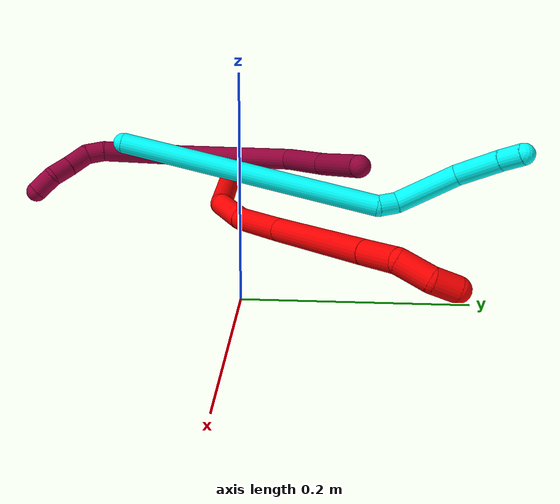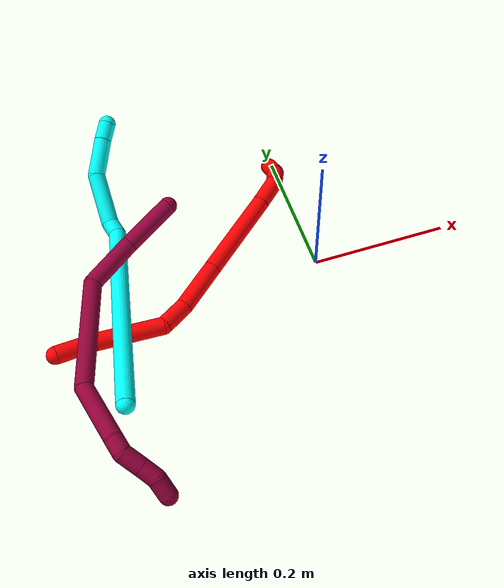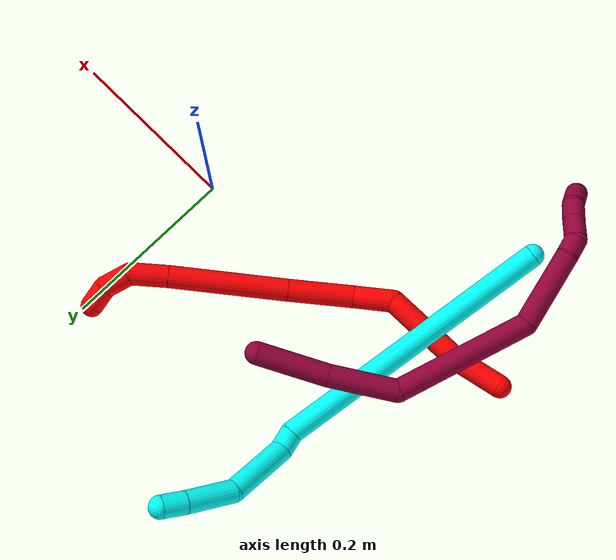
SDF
<sdf version="1.7">
 <world name="default">
  <model name="2">
   <static>0</static>
   <link name="2">
    <collision name="collision-cylinder-e_1_1_4">
     <pose>0.001031 0.019089 0.019875 -0.76524 0.037411 -0.015058</pose>
     <geometry><cylinder><radius>0.0125</radius><length>0.055154</length></cylinder></geometry>
     <surface>
      <friction><ode><mu>1.16</mu><mu2>1.16</mu2><slip1>0</slip1><slip2>0</slip2></ode></friction>
      <contact><ode><kp>1e+06</kp><kd>1</kd><max_vel>0</max_vel><min_depth>0.001</min_depth></ode></contact>
     </surface>
    </collision>
    <visual name="visual-cylinder-e_1_1_4">
     <pose>0.001031 0.019089 0.019875 -0.76524 0.037411 -0.015058</pose>
     <geometry><cylinder><radius>0.0125</radius><length>0.055154</length></cylinder></geometry>
     <material><ambient>1 0 0 1</ambient></material>
    </visual>
    <collision name="collision-cylinder-e_2_4_5">
     <pose>-0.005226 0.069563 0.074713 -0.731512 -0.15391 0.059045</pose>
     <geometry><cylinder><radius>0.0125</radius><length>0.095091</length></cylinder></geometry>
     <surface>
      <friction><ode><mu>1.16</mu><mu2>1.16</mu2><slip1>0</slip1><slip2>0</slip2></ode></friction>
      <contact><ode><kp>1e+06</kp><kd>1</kd><max_vel>0</max_vel><min_depth>0.001</min_depth></ode></contact>
     </surface>
    </collision>
    <visual name="visual-cylinder-e_2_4_5">
     <pose>-0.005226 0.069563 0.074713 -0.731512 -0.15391 0.059045</pose>
     <geometry><cylinder><radius>0.0125</radius><length>0.095091</length></cylinder></geometry>
     <material><ambient>1 0 0 1</ambient></material>
    </visual>
    <collision name="collision-cylinder-e_3_5_6">
     <pose>-0.004186 0.119019 0.119549 -1.07079 0.38436 -0.229829</pose>
     <geometry><cylinder><radius>0.0125</radius><length>0.044426</length></cylinder></geometry>
     <surface>
      <friction><ode><mu>1.16</mu><mu2>1.16</mu2><slip1>0</slip1><slip2>0</slip2></ode></friction>
      <contact><ode><kp>1e+06</kp><kd>1</kd><max_vel>0</max_vel><min_depth>0.001</min_depth></ode></contact>
     </surface>
    </collision>
    <visual name="visual-cylinder-e_3_5_6">
     <pose>-0.004186 0.119019 0.119549 -1.07079 0.38436 -0.229829</pose>
     <geometry><cylinder><radius>0.0125</radius><length>0.044426</length></cylinder></geometry>
     <material><ambient>1 0 0 1</ambient></material>
    </visual>
    <collision name="collision-cylinder-e_4_6_7">
     <pose>0.014742 0.170812 0.138863 -1.29781 0.293899 -0.223597</pose>
     <geometry><cylinder><radius>0.0125</radius><length>0.073174</length></cylinder></geometry>
     <surface>
      <friction><ode><mu>1.16</mu><mu2>1.16</mu2><slip1>0</slip1><slip2>0</slip2></ode></friction>
      <contact><ode><kp>1e+06</kp><kd>1</kd><max_vel>0</max_vel><min_depth>0.001</min_depth></ode></contact>
     </surface>
    </collision>
    <visual name="visual-cylinder-e_4_6_7">
     <pose>0.014742 0.170812 0.138863 -1.29781 0.293899 -0.223597</pose>
     <geometry><cylinder><radius>0.0125</radius><length>0.073174</length></cylinder></geometry>
     <material><ambient>1 0 0 1</ambient></material>
    </visual>
    <collision name="collision-cylinder-e_5_7_8">
     <pose>0.04312 0.265628 0.164801 -1.30707 0.273887 -0.210285</pose>
     <geometry><cylinder><radius>0.0125</radius><length>0.131466</length></cylinder></geometry>
     <surface>
      <friction><ode><mu>1.16</mu><mu2>1.16</mu2><slip1>0</slip1><slip2>0</slip2></ode></friction>
      <contact><ode><kp>1e+06</kp><kd>1</kd><max_vel>0</max_vel><min_depth>0.001</min_depth></ode></contact>
     </surface>
    </collision>
    <visual name="visual-cylinder-e_5_7_8">
     <pose>0.04312 0.265628 0.164801 -1.30707 0.273887 -0.210285</pose>
     <geometry><cylinder><radius>0.0125</radius><length>0.131466</length></cylinder></geometry>
     <material><ambient>1 0 0 1</ambient></material>
    </visual>
    <collision name="collision-cylinder-e_6_8_9">
     <pose>0.0672 0.345968 0.186032 -1.32958 0.307803 -0.241994</pose>
     <geometry><cylinder><radius>0.0125</radius><length>0.041592</length></cylinder></geometry>
     <surface>
      <friction><ode><mu>1.16</mu><mu2>1.16</mu2><slip1>0</slip1><slip2>0</slip2></ode></friction>
      <contact><ode><kp>1e+06</kp><kd>1</kd><max_vel>0</max_vel><min_depth>0.001</min_depth></ode></contact>
     </surface>
    </collision>
    <visual name="visual-cylinder-e_6_8_9">
     <pose>0.0672 0.345968 0.186032 -1.32958 0.307803 -0.241994</pose>
     <geometry><cylinder><radius>0.0125</radius><length>0.041592</length></cylinder></geometry>
     <material><ambient>1 0 0 1</ambient></material>
    </visual>
    <collision name="collision-cylinder-e_7_9_10">
     <pose>0.087046 0.374533 0.193968 -1.23982 0.941849 -0.69713</pose>
     <geometry><cylinder><radius>0.0125</radius><length>0.033503</length></cylinder></geometry>
     <surface>
      <friction><ode><mu>1.16</mu><mu2>1.16</mu2><slip1>0</slip1><slip2>0</slip2></ode></friction>
      <contact><ode><kp>1e+06</kp><kd>1</kd><max_vel>0</max_vel><min_depth>0.001</min_depth></ode></contact>
     </surface>
    </collision>
    <visual name="visual-cylinder-e_7_9_10">
     <pose>0.087046 0.374533 0.193968 -1.23982 0.941849 -0.69713</pose>
     <geometry><cylinder><radius>0.0125</radius><length>0.033503</length></cylinder></geometry>
     <material><ambient>1 0 0 1</ambient></material>
    </visual>
    <collision name="collision-cylinder-e_8_10_2">
     <pose>0.112743 0.387376 0.195241 -2.07199 1.2515 -1.76823</pose>
     <geometry><cylinder><radius>0.0125</radius><length>0.025595</length></cylinder></geometry>
     <surface>
      <friction><ode><mu>1.16</mu><mu2>1.16</mu2><slip1>0</slip1><slip2>0</slip2></ode></friction>
      <contact><ode><kp>1e+06</kp><kd>1</kd><max_vel>0</max_vel><min_depth>0.001</min_depth></ode></contact>
     </surface>
    </collision>
    <visual name="visual-cylinder-e_8_10_2">
     <pose>0.112743 0.387376 0.195241 -2.07199 1.2515 -1.76823</pose>
     <geometry><cylinder><radius>0.0125</radius><length>0.025595</length></cylinder></geometry>
     <material><ambient>1 0 0 1</ambient></material>
    </visual>
    <collision name="collision-sphere-2">
     <pose>0.124893 0.390899 0.193311 0 -0 0</pose>
     <geometry><sphere><radius>0.0125</radius></sphere></geometry>
     <surface>
      <friction><ode><mu>1.16</mu><mu2>1.16</mu2><slip1>0</slip1><slip2>0</slip2></ode></friction>
      <contact><ode><kp>1e+06</kp><kd>1</kd><max_vel>0</max_vel><min_depth>0.001</min_depth></ode></contact>
     </surface>
    </collision>
    <visual name="visual-sphere-2">
     <pose>0.124893 0.390899 0.193311 0 -0 0</pose>
     <geometry><sphere><radius>0.0125</radius></sphere></geometry>
     <material><ambient>1 0 0 1</ambient></material>
    </visual>
    <collision name="collision-sphere-10">
     <pose>0.100592 0.383853 0.197171 0 -0 0</pose>
     <geometry><sphere><radius>0.0125</radius></sphere></geometry>
     <surface>
      <friction><ode><mu>1.16</mu><mu2>1.16</mu2><slip1>0</slip1><slip2>0</slip2></ode></friction>
      <contact><ode><kp>1e+06</kp><kd>1</kd><max_vel>0</max_vel><min_depth>0.001</min_depth></ode></contact>
     </surface>
    </collision>
    <visual name="visual-sphere-10">
     <pose>0.100592 0.383853 0.197171 0 -0 0</pose>
     <geometry><sphere><radius>0.0125</radius></sphere></geometry>
     <material><ambient>1 0 0 1</ambient></material>
    </visual>
    <collision name="collision-sphere-9">
     <pose>0.0735 0.365213 0.190766 0 -0 0</pose>
     <geometry><sphere><radius>0.0125</radius></sphere></geometry>
     <surface>
      <friction><ode><mu>1.16</mu><mu2>1.16</mu2><slip1>0</slip1><slip2>0</slip2></ode></friction>
      <contact><ode><kp>1e+06</kp><kd>1</kd><max_vel>0</max_vel><min_depth>0.001</min_depth></ode></contact>
     </surface>
    </collision>
    <visual name="visual-sphere-9">
     <pose>0.0735 0.365213 0.190766 0 -0 0</pose>
     <geometry><sphere><radius>0.0125</radius></sphere></geometry>
     <material><ambient>1 0 0 1</ambient></material>
    </visual>
    <collision name="collision-sphere-4">
     <pose>0.002063 0.038179 0.03975 0 -0 0</pose>
     <geometry><sphere><radius>0.0125</radius></sphere></geometry>
     <surface>
      <friction><ode><mu>1.16</mu><mu2>1.16</mu2><slip1>0</slip1><slip2>0</slip2></ode></friction>
      <contact><ode><kp>1e+06</kp><kd>1</kd><max_vel>0</max_vel><min_depth>0.001</min_depth></ode></contact>
     </surface>
    </collision>
    <visual name="visual-sphere-4">
     <pose>0.002063 0.038179 0.03975 0 -0 0</pose>
     <geometry><sphere><radius>0.0125</radius></sphere></geometry>
     <material><ambient>1 0 0 1</ambient></material>
    </visual>
    <collision name="collision-sphere-1">
     <geometry><sphere><radius>0.0125</radius></sphere></geometry>
     <surface>
      <friction><ode><mu>1.16</mu><mu2>1.16</mu2><slip1>0</slip1><slip2>0</slip2></ode></friction>
      <contact><ode><kp>1e+06</kp><kd>1</kd><max_vel>0</max_vel><min_depth>0.001</min_depth></ode></contact>
     </surface>
    </collision>
    <visual name="visual-sphere-1">
     <geometry><sphere><radius>0.0125</radius></sphere></geometry>
     <material><ambient>1 0 0 1</ambient></material>
    </visual>
    <collision name="collision-sphere-8">
     <pose>0.060899 0.326723 0.181297 0 -0 0</pose>
     <geometry><sphere><radius>0.0125</radius></sphere></geometry>
     <surface>
      <friction><ode><mu>1.16</mu><mu2>1.16</mu2><slip1>0</slip1><slip2>0</slip2></ode></friction>
      <contact><ode><kp>1e+06</kp><kd>1</kd><max_vel>0</max_vel><min_depth>0.001</min_depth></ode></contact>
     </surface>
    </collision>
    <visual name="visual-sphere-8">
     <pose>0.060899 0.326723 0.181297 0 -0 0</pose>
     <geometry><sphere><radius>0.0125</radius></sphere></geometry>
     <material><ambient>1 0 0 1</ambient></material>
    </visual>
    <collision name="collision-sphere-5">
     <pose>-0.012515 0.100948 0.109677 0 -0 0</pose>
     <geometry><sphere><radius>0.0125</radius></sphere></geometry>
     <surface>
      <friction><ode><mu>1.16</mu><mu2>1.16</mu2><slip1>0</slip1><slip2>0</slip2></ode></friction>
      <contact><ode><kp>1e+06</kp><kd>1</kd><max_vel>0</max_vel><min_depth>0.001</min_depth></ode></contact>
     </surface>
    </collision>
    <visual name="visual-sphere-5">
     <pose>-0.012515 0.100948 0.109677 0 -0 0</pose>
     <geometry><sphere><radius>0.0125</radius></sphere></geometry>
     <material><ambient>1 0 0 1</ambient></material>
    </visual>
    <collision name="collision-sphere-6">
     <pose>0.004143 0.13709 0.129422 0 -0 0</pose>
     <geometry><sphere><radius>0.0125</radius></sphere></geometry>
     <surface>
      <friction><ode><mu>1.16</mu><mu2>1.16</mu2><slip1>0</slip1><slip2>0</slip2></ode></friction>
      <contact><ode><kp>1e+06</kp><kd>1</kd><max_vel>0</max_vel><min_depth>0.001</min_depth></ode></contact>
     </surface>
    </collision>
    <visual name="visual-sphere-6">
     <pose>0.004143 0.13709 0.129422 0 -0 0</pose>
     <geometry><sphere><radius>0.0125</radius></sphere></geometry>
     <material><ambient>1 0 0 1</ambient></material>
    </visual>
    <collision name="collision-sphere-7">
     <pose>0.025341 0.204533 0.148304 0 -0 0</pose>
     <geometry><sphere><radius>0.0125</radius></sphere></geometry>
     <surface>
      <friction><ode><mu>1.16</mu><mu2>1.16</mu2><slip1>0</slip1><slip2>0</slip2></ode></friction>
      <contact><ode><kp>1e+06</kp><kd>1</kd><max_vel>0</max_vel><min_depth>0.001</min_depth></ode></contact>
     </surface>
    </collision>
    <visual name="visual-sphere-7">
     <pose>0.025341 0.204533 0.148304 0 -0 0</pose>
     <geometry><sphere><radius>0.0125</radius></sphere></geometry>
     <material><ambient>1 0 0 1</ambient></material>
    </visual>
    <inertial>
     <pose>0.029437 0.194455 0.129144 0 -0 0</pose>
     <mass>0.5</mass>
     <inertia>
      <ixx>0.000285</ixx>
      <ixy>0</ixy>
      <ixz>0</ixz>
      <iyy>0.000134</iyy>
      <iyz>0</iyz>
      <izz>-0.00034</izz>
     </inertia>
    </inertial>
   </link>
   <pose>-0.388297 -0.055409 0.033784 2.51903 0.672122 1.82565</pose>
  </model>
  <model name="3">
   <static>0</static>
   <link name="3">
    <collision name="collision-cylinder-e_1_1_4">
     <pose>-0.048366 0.085668 0.125969 -0.597227 -0.307421 0.09531</pose>
     <geometry><cylinder><radius>0.0125</radius><length>0.319665</length></cylinder></geometry>
     <surface>
      <friction><ode><mu>1.16</mu><mu2>1.16</mu2><slip1>0</slip1><slip2>0</slip2></ode></friction>
      <contact><ode><kp>1e+06</kp><kd>1</kd><max_vel>0</max_vel><min_depth>0.001</min_depth></ode></contact>
     </surface>
    </collision>
    <visual name="visual-cylinder-e_1_1_4">
     <pose>-0.048366 0.085668 0.125969 -0.597227 -0.307421 0.09531</pose>
     <geometry><cylinder><radius>0.0125</radius><length>0.319665</length></cylinder></geometry>
     <material><ambient>0.003922 1 0.996078 1</ambient></material>
    </visual>
    <collision name="collision-cylinder-e_2_4_5">
     <pose>-0.094517 0.176158 0.261781 -0.455521 0.199342 -0.046349</pose>
     <geometry><cylinder><radius>0.0125</radius><length>0.022364</length></cylinder></geometry>
     <surface>
      <friction><ode><mu>1.16</mu><mu2>1.16</mu2><slip1>0</slip1><slip2>0</slip2></ode></friction>
      <contact><ode><kp>1e+06</kp><kd>1</kd><max_vel>0</max_vel><min_depth>0.001</min_depth></ode></contact>
     </surface>
    </collision>
    <visual name="visual-cylinder-e_2_4_5">
     <pose>-0.094517 0.176158 0.261781 -0.455521 0.199342 -0.046349</pose>
     <geometry><cylinder><radius>0.0125</radius><length>0.022364</length></cylinder></geometry>
     <material><ambient>0.003922 1 0.996078 1</ambient></material>
    </visual>
    <collision name="collision-cylinder-e_3_5_6">
     <pose>-0.080716 0.208719 0.294771 -0.875402 0.310335 -0.146145</pose>
     <geometry><cylinder><radius>0.0125</radius><length>0.075881</length></cylinder></geometry>
     <surface>
      <friction><ode><mu>1.16</mu><mu2>1.16</mu2><slip1>0</slip1><slip2>0</slip2></ode></friction>
      <contact><ode><kp>1e+06</kp><kd>1</kd><max_vel>0</max_vel><min_depth>0.001</min_depth></ode></contact>
     </surface>
    </collision>
    <visual name="visual-cylinder-e_3_5_6">
     <pose>-0.080716 0.208719 0.294771 -0.875402 0.310335 -0.146145</pose>
     <geometry><cylinder><radius>0.0125</radius><length>0.075881</length></cylinder></geometry>
     <material><ambient>0.003922 1 0.996078 1</ambient></material>
    </visual>
    <collision name="collision-cylinder-e_4_6_7">
     <pose>-0.068464 0.262415 0.327503 -1.21704 0.02408 -0.016777</pose>
     <geometry><cylinder><radius>0.0125</radius><length>0.055356</length></cylinder></geometry>
     <surface>
      <friction><ode><mu>1.16</mu><mu2>1.16</mu2><slip1>0</slip1><slip2>0</slip2></ode></friction>
      <contact><ode><kp>1e+06</kp><kd>1</kd><max_vel>0</max_vel><min_depth>0.001</min_depth></ode></contact>
     </surface>
    </collision>
    <visual name="visual-cylinder-e_4_6_7">
     <pose>-0.068464 0.262415 0.327503 -1.21704 0.02408 -0.016777</pose>
     <geometry><cylinder><radius>0.0125</radius><length>0.055356</length></cylinder></geometry>
     <material><ambient>0.003922 1 0.996078 1</ambient></material>
    </visual>
    <collision name="collision-cylinder-e_5_7_2">
     <pose>-0.06843 0.301016 0.341377 -1.24385 -0.04736 0.033952</pose>
     <geometry><cylinder><radius>0.0125</radius><length>0.026734</length></cylinder></geometry>
     <surface>
      <friction><ode><mu>1.16</mu><mu2>1.16</mu2><slip1>0</slip1><slip2>0</slip2></ode></friction>
      <contact><ode><kp>1e+06</kp><kd>1</kd><max_vel>0</max_vel><min_depth>0.001</min_depth></ode></contact>
     </surface>
    </collision>
    <visual name="visual-cylinder-e_5_7_2">
     <pose>-0.06843 0.301016 0.341377 -1.24385 -0.04736 0.033952</pose>
     <geometry><cylinder><radius>0.0125</radius><length>0.026734</length></cylinder></geometry>
     <material><ambient>0.003922 1 0.996078 1</ambient></material>
    </visual>
    <collision name="collision-sphere-2">
     <pose>-0.069063 0.313661 0.345664 0 -0 0</pose>
     <geometry><sphere><radius>0.0125</radius></sphere></geometry>
     <surface>
      <friction><ode><mu>1.16</mu><mu2>1.16</mu2><slip1>0</slip1><slip2>0</slip2></ode></friction>
      <contact><ode><kp>1e+06</kp><kd>1</kd><max_vel>0</max_vel><min_depth>0.001</min_depth></ode></contact>
     </surface>
    </collision>
    <visual name="visual-sphere-2">
     <pose>-0.069063 0.313661 0.345664 0 -0 0</pose>
     <geometry><sphere><radius>0.0125</radius></sphere></geometry>
     <material><ambient>0.003922 1 0.996078 1</ambient></material>
    </visual>
    <collision name="collision-sphere-7">
     <pose>-0.067797 0.288372 0.337089 0 -0 0</pose>
     <geometry><sphere><radius>0.0125</radius></sphere></geometry>
     <surface>
      <friction><ode><mu>1.16</mu><mu2>1.16</mu2><slip1>0</slip1><slip2>0</slip2></ode></friction>
      <contact><ode><kp>1e+06</kp><kd>1</kd><max_vel>0</max_vel><min_depth>0.001</min_depth></ode></contact>
     </surface>
    </collision>
    <visual name="visual-sphere-7">
     <pose>-0.067797 0.288372 0.337089 0 -0 0</pose>
     <geometry><sphere><radius>0.0125</radius></sphere></geometry>
     <material><ambient>0.003922 1 0.996078 1</ambient></material>
    </visual>
    <collision name="collision-sphere-6">
     <pose>-0.06913 0.236458 0.317917 0 -0 0</pose>
     <geometry><sphere><radius>0.0125</radius></sphere></geometry>
     <surface>
      <friction><ode><mu>1.16</mu><mu2>1.16</mu2><slip1>0</slip1><slip2>0</slip2></ode></friction>
      <contact><ode><kp>1e+06</kp><kd>1</kd><max_vel>0</max_vel><min_depth>0.001</min_depth></ode></contact>
     </surface>
    </collision>
    <visual name="visual-sphere-6">
     <pose>-0.06913 0.236458 0.317917 0 -0 0</pose>
     <geometry><sphere><radius>0.0125</radius></sphere></geometry>
     <material><ambient>0.003922 1 0.996078 1</ambient></material>
    </visual>
    <collision name="collision-sphere-5">
     <pose>-0.092302 0.18098 0.271624 0 -0 0</pose>
     <geometry><sphere><radius>0.0125</radius></sphere></geometry>
     <surface>
      <friction><ode><mu>1.16</mu><mu2>1.16</mu2><slip1>0</slip1><slip2>0</slip2></ode></friction>
      <contact><ode><kp>1e+06</kp><kd>1</kd><max_vel>0</max_vel><min_depth>0.001</min_depth></ode></contact>
     </surface>
    </collision>
    <visual name="visual-sphere-5">
     <pose>-0.092302 0.18098 0.271624 0 -0 0</pose>
     <geometry><sphere><radius>0.0125</radius></sphere></geometry>
     <material><ambient>0.003922 1 0.996078 1</ambient></material>
    </visual>
    <collision name="collision-sphere-1">
     <geometry><sphere><radius>0.0125</radius></sphere></geometry>
     <surface>
      <friction><ode><mu>1.16</mu><mu2>1.16</mu2><slip1>0</slip1><slip2>0</slip2></ode></friction>
      <contact><ode><kp>1e+06</kp><kd>1</kd><max_vel>0</max_vel><min_depth>0.001</min_depth></ode></contact>
     </surface>
    </collision>
    <visual name="visual-sphere-1">
     <geometry><sphere><radius>0.0125</radius></sphere></geometry>
     <material><ambient>0.003922 1 0.996078 1</ambient></material>
    </visual>
    <collision name="collision-sphere-4">
     <pose>-0.096731 0.171336 0.251938 0 -0 0</pose>
     <geometry><sphere><radius>0.0125</radius></sphere></geometry>
     <surface>
      <friction><ode><mu>1.16</mu><mu2>1.16</mu2><slip1>0</slip1><slip2>0</slip2></ode></friction>
      <contact><ode><kp>1e+06</kp><kd>1</kd><max_vel>0</max_vel><min_depth>0.001</min_depth></ode></contact>
     </surface>
    </collision>
    <visual name="visual-sphere-4">
     <pose>-0.096731 0.171336 0.251938 0 -0 0</pose>
     <geometry><sphere><radius>0.0125</radius></sphere></geometry>
     <material><ambient>0.003922 1 0.996078 1</ambient></material>
    </visual>
    <inertial>
     <pose>-0.058637 0.139472 0.191491 0 -0 0</pose>
     <mass>0.5</mass>
     <inertia>
      <ixx>0.002889</ixx>
      <ixy>0</ixy>
      <ixz>0</ixz>
      <iyy>0.002596</iyy>
      <iyz>0</iyz>
      <izz>-0.000671</izz>
     </inertia>
    </inertial>
   </link>
   <pose>-0.317618 -0.175545 0.07058 2.07826 -0.893377 -3.05125</pose>
  </model>
  <model name="8">
   <static>0</static>
   <link name="8">
    <collision name="collision-cylinder-e_1_1_4">
     <pose>0.016826 -0.009255 0.034282 0.263693 0.442513 0.059643</pose>
     <geometry><cylinder><radius>0.0125</radius><length>0.078589</length></cylinder></geometry>
     <surface>
      <friction><ode><mu>1.16</mu><mu2>1.16</mu2><slip1>0</slip1><slip2>0</slip2></ode></friction>
      <contact><ode><kp>1e+06</kp><kd>1</kd><max_vel>0</max_vel><min_depth>0.001</min_depth></ode></contact>
     </surface>
    </collision>
    <visual name="visual-cylinder-e_1_1_4">
     <pose>0.016826 -0.009255 0.034282 0.263693 0.442513 0.059643</pose>
     <geometry><cylinder><radius>0.0125</radius><length>0.078589</length></cylinder></geometry>
     <material><ambient>0.584314 0 0.227451 1</ambient></material>
    </visual>
    <collision name="collision-cylinder-e_2_4_5">
     <pose>0.051877 -0.024474 0.101282 0.180279 0.501293 0.046274</pose>
     <geometry><cylinder><radius>0.0125</radius><length>0.075846</length></cylinder></geometry>
     <surface>
      <friction><ode><mu>1.16</mu><mu2>1.16</mu2><slip1>0</slip1><slip2>0</slip2></ode></friction>
      <contact><ode><kp>1e+06</kp><kd>1</kd><max_vel>0</max_vel><min_depth>0.001</min_depth></ode></contact>
     </surface>
    </collision>
    <visual name="visual-cylinder-e_2_4_5">
     <pose>0.051877 -0.024474 0.101282 0.180279 0.501293 0.046274</pose>
     <geometry><cylinder><radius>0.0125</radius><length>0.075846</length></cylinder></geometry>
     <material><ambient>0.584314 0 0.227451 1</ambient></material>
    </visual>
    <collision name="collision-cylinder-e_3_5_6">
     <pose>0.140553 -0.019129 0.16715 -0.328741 1.10943 -0.204826</pose>
     <geometry><cylinder><radius>0.0125</radius><length>0.157356</length></cylinder></geometry>
     <surface>
      <friction><ode><mu>1.16</mu><mu2>1.16</mu2><slip1>0</slip1><slip2>0</slip2></ode></friction>
      <contact><ode><kp>1e+06</kp><kd>1</kd><max_vel>0</max_vel><min_depth>0.001</min_depth></ode></contact>
     </surface>
    </collision>
    <visual name="visual-cylinder-e_3_5_6">
     <pose>0.140553 -0.019129 0.16715 -0.328741 1.10943 -0.204826</pose>
     <geometry><cylinder><radius>0.0125</radius><length>0.157356</length></cylinder></geometry>
     <material><ambient>0.584314 0 0.227451 1</ambient></material>
    </visual>
    <collision name="collision-cylinder-e_4_6_7">
     <pose>0.251289 0.009398 0.198049 -1.70076 1.16379 -1.28631</pose>
     <geometry><cylinder><radius>0.0125</radius><length>0.087736</length></cylinder></geometry>
     <surface>
      <friction><ode><mu>1.16</mu><mu2>1.16</mu2><slip1>0</slip1><slip2>0</slip2></ode></friction>
      <contact><ode><kp>1e+06</kp><kd>1</kd><max_vel>0</max_vel><min_depth>0.001</min_depth></ode></contact>
     </surface>
    </collision>
    <visual name="visual-cylinder-e_4_6_7">
     <pose>0.251289 0.009398 0.198049 -1.70076 1.16379 -1.28631</pose>
     <geometry><cylinder><radius>0.0125</radius><length>0.087736</length></cylinder></geometry>
     <material><ambient>0.584314 0 0.227451 1</ambient></material>
    </visual>
    <collision name="collision-cylinder-e_5_7_8">
     <pose>0.302231 0.028551 0.194473 -2.17193 1.35423 -1.98146</pose>
     <geometry><cylinder><radius>0.0125</radius><length>0.021825</length></cylinder></geometry>
     <surface>
      <friction><ode><mu>1.16</mu><mu2>1.16</mu2><slip1>0</slip1><slip2>0</slip2></ode></friction>
      <contact><ode><kp>1e+06</kp><kd>1</kd><max_vel>0</max_vel><min_depth>0.001</min_depth></ode></contact>
     </surface>
    </collision>
    <visual name="visual-cylinder-e_5_7_8">
     <pose>0.302231 0.028551 0.194473 -2.17193 1.35423 -1.98146</pose>
     <geometry><cylinder><radius>0.0125</radius><length>0.021825</length></cylinder></geometry>
     <material><ambient>0.584314 0 0.227451 1</ambient></material>
    </visual>
    <collision name="collision-cylinder-e_6_8_9">
     <pose>0.324375 0.029214 0.185173 2.98362 0.958102 2.83914</pose>
     <geometry><cylinder><radius>0.0125</radius><length>0.02808</length></cylinder></geometry>
     <surface>
      <friction><ode><mu>1.16</mu><mu2>1.16</mu2><slip1>0</slip1><slip2>0</slip2></ode></friction>
      <contact><ode><kp>1e+06</kp><kd>1</kd><max_vel>0</max_vel><min_depth>0.001</min_depth></ode></contact>
     </surface>
    </collision>
    <visual name="visual-cylinder-e_6_8_9">
     <pose>0.324375 0.029214 0.185173 2.98362 0.958102 2.83914</pose>
     <geometry><cylinder><radius>0.0125</radius><length>0.02808</length></cylinder></geometry>
     <material><ambient>0.584314 0 0.227451 1</ambient></material>
    </visual>
    <collision name="collision-cylinder-e_7_9_10">
     <pose>0.345904 0.027396 0.170708 3.05728 0.995354 2.98662</pose>
     <geometry><cylinder><radius>0.0125</radius><length>0.023942</length></cylinder></geometry>
     <surface>
      <friction><ode><mu>1.16</mu><mu2>1.16</mu2><slip1>0</slip1><slip2>0</slip2></ode></friction>
      <contact><ode><kp>1e+06</kp><kd>1</kd><max_vel>0</max_vel><min_depth>0.001</min_depth></ode></contact>
     </surface>
    </collision>
    <visual name="visual-cylinder-e_7_9_10">
     <pose>0.345904 0.027396 0.170708 3.05728 0.995354 2.98662</pose>
     <geometry><cylinder><radius>0.0125</radius><length>0.023942</length></cylinder></geometry>
     <material><ambient>0.584314 0 0.227451 1</ambient></material>
    </visual>
    <collision name="collision-cylinder-e_8_10_2">
     <pose>0.367647 0.022046 0.160054 2.28502 1.07328 1.83241</pose>
     <geometry><cylinder><radius>0.0125</radius><length>0.026626</length></cylinder></geometry>
     <surface>
      <friction><ode><mu>1.16</mu><mu2>1.16</mu2><slip1>0</slip1><slip2>0</slip2></ode></friction>
      <contact><ode><kp>1e+06</kp><kd>1</kd><max_vel>0</max_vel><min_depth>0.001</min_depth></ode></contact>
     </surface>
    </collision>
    <visual name="visual-cylinder-e_8_10_2">
     <pose>0.367647 0.022046 0.160054 2.28502 1.07328 1.83241</pose>
     <geometry><cylinder><radius>0.0125</radius><length>0.026626</length></cylinder></geometry>
     <material><ambient>0.584314 0 0.227451 1</ambient></material>
    </visual>
    <collision name="collision-sphere-2">
     <pose>0.379346 0.017246 0.155893 0 -0 0</pose>
     <geometry><sphere><radius>0.0125</radius></sphere></geometry>
     <surface>
      <friction><ode><mu>1.16</mu><mu2>1.16</mu2><slip1>0</slip1><slip2>0</slip2></ode></friction>
      <contact><ode><kp>1e+06</kp><kd>1</kd><max_vel>0</max_vel><min_depth>0.001</min_depth></ode></contact>
     </surface>
    </collision>
    <visual name="visual-sphere-2">
     <pose>0.379346 0.017246 0.155893 0 -0 0</pose>
     <geometry><sphere><radius>0.0125</radius></sphere></geometry>
     <material><ambient>0.584314 0 0.227451 1</ambient></material>
    </visual>
    <collision name="collision-sphere-10">
     <pose>0.355948 0.026847 0.164216 0 -0 0</pose>
     <geometry><sphere><radius>0.0125</radius></sphere></geometry>
     <surface>
      <friction><ode><mu>1.16</mu><mu2>1.16</mu2><slip1>0</slip1><slip2>0</slip2></ode></friction>
      <contact><ode><kp>1e+06</kp><kd>1</kd><max_vel>0</max_vel><min_depth>0.001</min_depth></ode></contact>
     </surface>
    </collision>
    <visual name="visual-sphere-10">
     <pose>0.355948 0.026847 0.164216 0 -0 0</pose>
     <geometry><sphere><radius>0.0125</radius></sphere></geometry>
     <material><ambient>0.584314 0 0.227451 1</ambient></material>
    </visual>
    <collision name="collision-sphere-9">
     <pose>0.335861 0.027944 0.177199 0 -0 0</pose>
     <geometry><sphere><radius>0.0125</radius></sphere></geometry>
     <surface>
      <friction><ode><mu>1.16</mu><mu2>1.16</mu2><slip1>0</slip1><slip2>0</slip2></ode></friction>
      <contact><ode><kp>1e+06</kp><kd>1</kd><max_vel>0</max_vel><min_depth>0.001</min_depth></ode></contact>
     </surface>
    </collision>
    <visual name="visual-sphere-9">
     <pose>0.335861 0.027944 0.177199 0 -0 0</pose>
     <geometry><sphere><radius>0.0125</radius></sphere></geometry>
     <material><ambient>0.584314 0 0.227451 1</ambient></material>
    </visual>
    <collision name="collision-sphere-4">
     <pose>0.033653 -0.018511 0.068564 0 -0 0</pose>
     <geometry><sphere><radius>0.0125</radius></sphere></geometry>
     <surface>
      <friction><ode><mu>1.16</mu><mu2>1.16</mu2><slip1>0</slip1><slip2>0</slip2></ode></friction>
      <contact><ode><kp>1e+06</kp><kd>1</kd><max_vel>0</max_vel><min_depth>0.001</min_depth></ode></contact>
     </surface>
    </collision>
    <visual name="visual-sphere-4">
     <pose>0.033653 -0.018511 0.068564 0 -0 0</pose>
     <geometry><sphere><radius>0.0125</radius></sphere></geometry>
     <material><ambient>0.584314 0 0.227451 1</ambient></material>
    </visual>
    <collision name="collision-sphere-1">
     <geometry><sphere><radius>0.0125</radius></sphere></geometry>
     <surface>
      <friction><ode><mu>1.16</mu><mu2>1.16</mu2><slip1>0</slip1><slip2>0</slip2></ode></friction>
      <contact><ode><kp>1e+06</kp><kd>1</kd><max_vel>0</max_vel><min_depth>0.001</min_depth></ode></contact>
     </surface>
    </collision>
    <visual name="visual-sphere-1">
     <geometry><sphere><radius>0.0125</radius></sphere></geometry>
     <material><ambient>0.584314 0 0.227451 1</ambient></material>
    </visual>
    <collision name="collision-sphere-8">
     <pose>0.312889 0.030485 0.193146 0 -0 0</pose>
     <geometry><sphere><radius>0.0125</radius></sphere></geometry>
     <surface>
      <friction><ode><mu>1.16</mu><mu2>1.16</mu2><slip1>0</slip1><slip2>0</slip2></ode></friction>
      <contact><ode><kp>1e+06</kp><kd>1</kd><max_vel>0</max_vel><min_depth>0.001</min_depth></ode></contact>
     </surface>
    </collision>
    <visual name="visual-sphere-8">
     <pose>0.312889 0.030485 0.193146 0 -0 0</pose>
     <geometry><sphere><radius>0.0125</radius></sphere></geometry>
     <material><ambient>0.584314 0 0.227451 1</ambient></material>
    </visual>
    <collision name="collision-sphere-5">
     <pose>0.070101 -0.030437 0.134 0 -0 0</pose>
     <geometry><sphere><radius>0.0125</radius></sphere></geometry>
     <surface>
      <friction><ode><mu>1.16</mu><mu2>1.16</mu2><slip1>0</slip1><slip2>0</slip2></ode></friction>
      <contact><ode><kp>1e+06</kp><kd>1</kd><max_vel>0</max_vel><min_depth>0.001</min_depth></ode></contact>
     </surface>
    </collision>
    <visual name="visual-sphere-5">
     <pose>0.070101 -0.030437 0.134 0 -0 0</pose>
     <geometry><sphere><radius>0.0125</radius></sphere></geometry>
     <material><ambient>0.584314 0 0.227451 1</ambient></material>
    </visual>
    <collision name="collision-sphere-6">
     <pose>0.211005 -0.007821 0.2003 0 -0 0</pose>
     <geometry><sphere><radius>0.0125</radius></sphere></geometry>
     <surface>
      <friction><ode><mu>1.16</mu><mu2>1.16</mu2><slip1>0</slip1><slip2>0</slip2></ode></friction>
      <contact><ode><kp>1e+06</kp><kd>1</kd><max_vel>0</max_vel><min_depth>0.001</min_depth></ode></contact>
     </surface>
    </collision>
    <visual name="visual-sphere-6">
     <pose>0.211005 -0.007821 0.2003 0 -0 0</pose>
     <geometry><sphere><radius>0.0125</radius></sphere></geometry>
     <material><ambient>0.584314 0 0.227451 1</ambient></material>
    </visual>
    <collision name="collision-sphere-7">
     <pose>0.291574 0.026617 0.195799 0 -0 0</pose>
     <geometry><sphere><radius>0.0125</radius></sphere></geometry>
     <surface>
      <friction><ode><mu>1.16</mu><mu2>1.16</mu2><slip1>0</slip1><slip2>0</slip2></ode></friction>
      <contact><ode><kp>1e+06</kp><kd>1</kd><max_vel>0</max_vel><min_depth>0.001</min_depth></ode></contact>
     </surface>
    </collision>
    <visual name="visual-sphere-7">
     <pose>0.291574 0.026617 0.195799 0 -0 0</pose>
     <geometry><sphere><radius>0.0125</radius></sphere></geometry>
     <material><ambient>0.584314 0 0.227451 1</ambient></material>
    </visual>
    <inertial>
     <pose>0.166393 -0.004166 0.143694 0 -0 0</pose>
     <mass>0.5</mass>
     <inertia>
      <ixx>0.000204</ixx>
      <ixy>0</ixy>
      <ixz>0</ixz>
      <iyy>0.00042</iyy>
      <iyz>0</iyz>
      <izz>-0.000438</izz>
     </inertia>
    </inertial>
   </link>
   <pose>-0.186799 0.10804 0.077694 1.37435 0.295447 -1.46864</pose>
  </model>
 </world>
</sdf>
